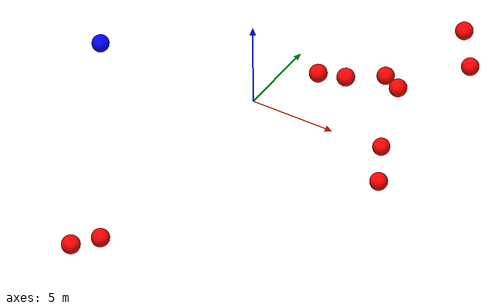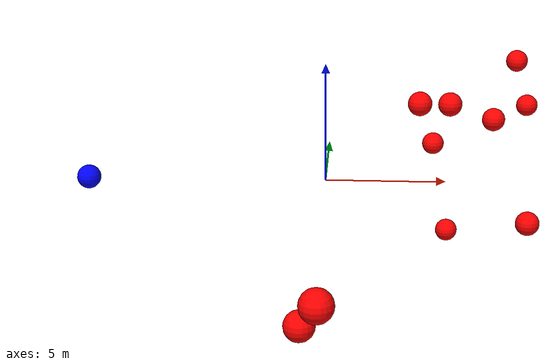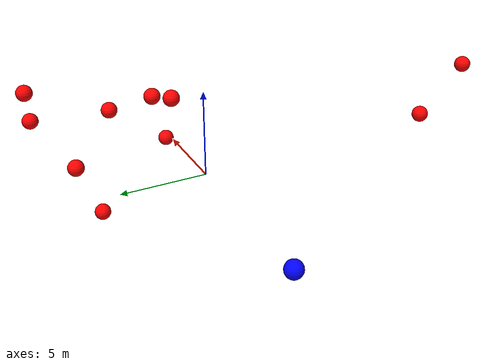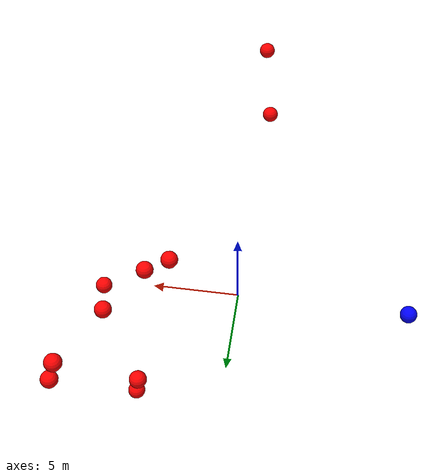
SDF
<?xml version="1.0" ?>
<sdf version="1.8">
    <world name="3d_world">
        <physics name="1ms" type="ode">
            <max_step_size>0.001</max_step_size>
            <real_time_factor>1.0</real_time_factor>
            <real_time_update_rate>1000.0</real_time_update_rate>
        </physics>
        <gravity>0 0 0</gravity>

        <plugin
            filename="gz-sim-physics-system"
            name="gz::sim::v8::systems::Physics">
        </plugin>
        <plugin
            filename="libignition-gazebo-user-commands-system.so"
            name="ignition::gazebo::systems::UserCommands">
        </plugin>
        <plugin
            filename="gz-sim-scene-broadcaster-system"
            name="gz::sim::systems::SceneBroadcaster">
        </plugin>
        <plugin
            filename="gz-sim-sensors-system"
            name="gz::sim::systems::Sensors">
            <render_engine>ogre2</render_engine>
        </plugin>

        <light type="directional" name="sun">
            <cast_shadows>true</cast_shadows>
            <pose>0 0 10 0 0 0</pose>
            <diffuse>0.8 0.8 0.8 1</diffuse>
            <specular>0.2 0.2 0.2 1</specular>
            <attenuation>
                <range>1000</range>
                <constant>0.9</constant>
                <linear>0.01</linear>
                <quadratic>0.001</quadratic>
            </attenuation>
            <direction>-0.5 0.1 -0.9</direction>
        </light>

        <!-- AGENTE -->
        <model name='agente' canonical_link='chassis'>
            <pose relative_to='world'>-10.0 0 0.0 0 0 0</pose>
            <link name='chassis'>
                <pose relative_to='__model__'>0.0 0 0.0 0 0 0</pose>
                <inertial>
                    <mass>1.14395</mass>
                    <inertia>
                        <ixx>0.095329</ixx>
                        <ixy>0</ixy>
                        <ixz>0</ixz>
                        <iyy>0.381317</iyy>
                        <iyz>0</iyz>
                        <izz>0.476646</izz>
                    </inertia>
                </inertial>
                <visual name='visual'>
                    <geometry>
                        <sphere>
                            <radius>0.5</radius>
                        </sphere>
                    </geometry>
                    <material>
                        <ambient>0.0 0.0 1.0 1</ambient>
                        <diffuse>0.0 0.0 1.0 1</diffuse>
                        <specular>0.0 0.0 1.0 1</specular>
                    </material>
                </visual>
                <collision name='collision'>
                    <geometry>
                        <sphere>
                            <radius>0.5</radius>
                        </sphere>
                    </geometry>
                </collision>
                <enable_gravity>false</enable_gravity>
            </link>

            <link name='lidar_link'>
                <pose relative_to='chassis'>0.0 0 0.1 0 0 0</pose>
                <inertial>
                    <mass>0.1</mass>
                    <inertia>
                        <ixx>0.000166667</ixx>
                        <iyy>0.000166667</iyy>
                        <izz>0.000166667</izz>
                    </inertia>
                </inertial>
                <collision name='collision'>
                    <geometry>
                        <cylinder>
                            <radius>0.05</radius>
                            <length>0.1</length>
                        </cylinder>
                    </geometry>
                </collision>
                <visual name='visual'>
                    <geometry>
                        <cylinder>
                            <radius>0.05</radius>
                            <length>0.1</length>
                        </cylinder>
                    </geometry>
                    <material>
                        <ambient>0.0 1.0 0.0 1</ambient>
                        <diffuse>0.0 1.0 0.0 1</diffuse>
                        <specular>0.0 1.0 0.0 1</specular>
                    </material>
                </visual>
                <sensor name="lidar" type="gpu_lidar">
                    <topic>scan</topic>
                    <update_rate>10</update_rate>
                    <lidar>
                        <scan>
                            <horizontal>
                                <samples>5000</samples>
                                <resolution>1</resolution>
                                <min_angle>-3.14159</min_angle>
                                <max_angle>3.14159</max_angle>
                            </horizontal>
                        </scan>
                        <range>
                            <min>0.1</min>
                            <max>10.0</max>
                            <resolution>0.01</resolution>
                        </range>
                    </lidar>
                    <visualize>true</visualize>
                    <always_on>true</always_on>
                    <update_rate>10</update_rate>
                    <pose_frame>lidar</pose_frame>
                </sensor>
                <enable_gravity>false</enable_gravity>
            </link>

            <joint name="lidar_joint" type="fixed">
                <parent>chassis</parent>
                <child>lidar_link</child>
            </joint>

            <plugin
                filename="ignition-gazebo-joint-state-publisher-system"
                name="ignition::gazebo::systems::JointStatePublisher">
            </plugin>
            <plugin
                filename="ignition-gazebo-odometry-publisher-system"
                name="ignition::gazebo::systems::OdometryPublisher">
                <dimensions>3</dimensions>
            </plugin>
            <plugin
                filename="ignition-gazebo-velocity-control-system"
                name="ignition::gazebo::systems::VelocityControl">
                <initial_linear>0.0 0 0</initial_linear>
                <initial_angular>0 0 0.0</initial_angular>
            </plugin>
            <plugin
                filename="libignition-gazebo-pose-publisher-system.so"
                name="ignition::gazebo::systems::PosePublisher">
                <topic>/agente/pose</topic>
                <frame_id>agente</frame_id>
                <update_rate>30</update_rate>
            </plugin>
        </model>

        <!-- OBSTACLE 1 -->
        <model name='obstacle_1' canonical_link='obstacle'>
            <static>false</static>
            <pose relative_to='world'>8.68 7.86 3.18 0 0 0</pose>
            <link name='obstacle'>
                <pose relative_to='__model__'>0.0 0 0.0 0 0 0</pose>
                <visual name='visual'>
                    <geometry>
                        <sphere>
                            <radius>0.50</radius>
                        </sphere>
                    </geometry>
                    <material>
                        <ambient>1.0 0.0 0.0 1</ambient>
                        <diffuse>1.0 0.0 0.0 1</diffuse>
                        <specular>1.0 0.0 0.0 1</specular>
                    </material>
                </visual>
                <collision name='collision'>
                    <geometry>
                        <sphere>
                            <radius>0.50</radius>
                        </sphere>
                    </geometry>
                </collision>
                <enable_gravity>false</enable_gravity>
            </link>

            <plugin
                filename="ignition-gazebo-velocity-control-system"
                name="ignition::gazebo::systems::VelocityControl">
                <initial_linear>-0.93 -1.44 -0.58</initial_linear>
                <initial_angular>0 0 0</initial_angular>
            </plugin>

            <plugin
                filename="ignition-gazebo-odometry-publisher-system"
                name="ignition::gazebo::systems::OdometryPublisher">
                <dimensions>3</dimensions>
            </plugin>
        </model>

        <!-- OBSTACLE 2 -->
        <model name='obstacle_2' canonical_link='obstacle'>
            <static>false</static>
            <pose relative_to='world'>4.78 6.17 -0.39 0 0 0</pose>
            <link name='obstacle'>
                <pose relative_to='__model__'>0.0 0 0.0 0 0 0</pose>
                <visual name='visual'>
                    <geometry>
                        <sphere>
                            <radius>0.50</radius>
                        </sphere>
                    </geometry>
                    <material>
                        <ambient>1.0 0.0 0.0 1</ambient>
                        <diffuse>1.0 0.0 0.0 1</diffuse>
                        <specular>1.0 0.0 0.0 1</specular>
                    </material>
                </visual>
                <collision name='collision'>
                    <geometry>
                        <sphere>
                            <radius>0.50</radius>
                        </sphere>
                    </geometry>
                </collision>
                <enable_gravity>false</enable_gravity>
            </link>

            <plugin
                filename="ignition-gazebo-velocity-control-system"
                name="ignition::gazebo::systems::VelocityControl">
                <initial_linear>-1.34 -1.48 0.09</initial_linear>
                <initial_angular>0 0 0</initial_angular>
            </plugin>

            <plugin
                filename="ignition-gazebo-odometry-publisher-system"
                name="ignition::gazebo::systems::OdometryPublisher">
                <dimensions>3</dimensions>
            </plugin>
        </model>

        <!-- OBSTACLE 3 -->
        <model name='obstacle_3' canonical_link='obstacle'>
            <static>false</static>
            <pose relative_to='world'>-0.22 -14.71 0.83 0 0 0</pose>
            <link name='obstacle'>
                <pose relative_to='__model__'>0.0 0 0.0 0 0 0</pose>
                <visual name='visual'>
                    <geometry>
                        <sphere>
                            <radius>0.50</radius>
                        </sphere>
                    </geometry>
                    <material>
                        <ambient>1.0 0.0 0.0 1</ambient>
                        <diffuse>1.0 0.0 0.0 1</diffuse>
                        <specular>1.0 0.0 0.0 1</specular>
                    </material>
                </visual>
                <collision name='collision'>
                    <geometry>
                        <sphere>
                            <radius>0.50</radius>
                        </sphere>
                    </geometry>
                </collision>
                <enable_gravity>false</enable_gravity>
            </link>

            <plugin
                filename="ignition-gazebo-velocity-control-system"
                name="ignition::gazebo::systems::VelocityControl">
                <initial_linear>0.90 1.79 -0.10</initial_linear>
                <initial_angular>0 0 0</initial_angular>
            </plugin>

            <plugin
                filename="ignition-gazebo-odometry-publisher-system"
                name="ignition::gazebo::systems::OdometryPublisher">
                <dimensions>3</dimensions>
            </plugin>
        </model>

        <!-- OBSTACLE 4 -->
        <model name='obstacle_4' canonical_link='obstacle'>
            <static>false</static>
            <pose relative_to='world'>9.24 7.66 1.07 0 0 0</pose>
            <link name='obstacle'>
                <pose relative_to='__model__'>0.0 0 0.0 0 0 0</pose>
                <visual name='visual'>
                    <geometry>
                        <sphere>
                            <radius>0.50</radius>
                        </sphere>
                    </geometry>
                    <material>
                        <ambient>1.0 0.0 0.0 1</ambient>
                        <diffuse>1.0 0.0 0.0 1</diffuse>
                        <specular>1.0 0.0 0.0 1</specular>
                    </material>
                </visual>
                <collision name='collision'>
                    <geometry>
                        <sphere>
                            <radius>0.50</radius>
                        </sphere>
                    </geometry>
                </collision>
                <enable_gravity>false</enable_gravity>
            </link>

            <plugin
                filename="ignition-gazebo-velocity-control-system"
                name="ignition::gazebo::systems::VelocityControl">
                <initial_linear>-1.61 -1.17 -0.16</initial_linear>
                <initial_angular>0 0 0</initial_angular>
            </plugin>

            <plugin
                filename="ignition-gazebo-odometry-publisher-system"
                name="ignition::gazebo::systems::OdometryPublisher">
                <dimensions>3</dimensions>
            </plugin>
        </model>

        <!-- OBSTACLE 5 -->
        <model name='obstacle_5' canonical_link='obstacle'>
            <static>false</static>
            <pose relative_to='world'>7.22 3.23 1.73 0 0 0</pose>
            <link name='obstacle'>
                <pose relative_to='__model__'>0.0 0 0.0 0 0 0</pose>
                <visual name='visual'>
                    <geometry>
                        <sphere>
                            <radius>0.50</radius>
                        </sphere>
                    </geometry>
                    <material>
                        <ambient>1.0 0.0 0.0 1</ambient>
                        <diffuse>1.0 0.0 0.0 1</diffuse>
                        <specular>1.0 0.0 0.0 1</specular>
                    </material>
                </visual>
                <collision name='collision'>
                    <geometry>
                        <sphere>
                            <radius>0.50</radius>
                        </sphere>
                    </geometry>
                </collision>
                <enable_gravity>false</enable_gravity>
            </link>

            <plugin
                filename="ignition-gazebo-velocity-control-system"
                name="ignition::gazebo::systems::VelocityControl">
                <initial_linear>-1.86 -0.64 -0.34</initial_linear>
                <initial_angular>0 0 0</initial_angular>
            </plugin>

            <plugin
                filename="ignition-gazebo-odometry-publisher-system"
                name="ignition::gazebo::systems::OdometryPublisher">
                <dimensions>3</dimensions>
            </plugin>
        </model>

        <!-- OBSTACLE 6 -->
        <model name='obstacle_6' canonical_link='obstacle'>
            <static>false</static>
            <pose relative_to='world'>5.43 4.70 -4.14 0 0 0</pose>
            <link name='obstacle'>
                <pose relative_to='__model__'>0.0 0 0.0 0 0 0</pose>
                <visual name='visual'>
                    <geometry>
                        <sphere>
                            <radius>0.50</radius>
                        </sphere>
                    </geometry>
                    <material>
                        <ambient>1.0 0.0 0.0 1</ambient>
                        <diffuse>1.0 0.0 0.0 1</diffuse>
                        <specular>1.0 0.0 0.0 1</specular>
                    </material>
                </visual>
                <collision name='collision'>
                    <geometry>
                        <sphere>
                            <radius>0.50</radius>
                        </sphere>
                    </geometry>
                </collision>
                <enable_gravity>false</enable_gravity>
            </link>

            <plugin
                filename="ignition-gazebo-velocity-control-system"
                name="ignition::gazebo::systems::VelocityControl">
                <initial_linear>-1.57 -0.93 0.82</initial_linear>
                <initial_angular>0 0 0</initial_angular>
            </plugin>

            <plugin
                filename="ignition-gazebo-odometry-publisher-system"
                name="ignition::gazebo::systems::OdometryPublisher">
                <dimensions>3</dimensions>
            </plugin>
        </model>

        <!-- OBSTACLE 7 -->
        <model name='obstacle_7' canonical_link='obstacle'>
            <static>false</static>
            <pose relative_to='world'>3.87 0.40 3.26 0 0 0</pose>
            <link name='obstacle'>
                <pose relative_to='__model__'>0.0 0 0.0 0 0 0</pose>
                <visual name='visual'>
                    <geometry>
                        <sphere>
                            <radius>0.50</radius>
                        </sphere>
                    </geometry>
                    <material>
                        <ambient>1.0 0.0 0.0 1</ambient>
                        <diffuse>1.0 0.0 0.0 1</diffuse>
                        <specular>1.0 0.0 0.0 1</specular>
                    </material>
                </visual>
                <collision name='collision'>
                    <geometry>
                        <sphere>
                            <radius>0.50</radius>
                        </sphere>
                    </geometry>
                </collision>
                <enable_gravity>false</enable_gravity>
            </link>

            <plugin
                filename="ignition-gazebo-velocity-control-system"
                name="ignition::gazebo::systems::VelocityControl">
                <initial_linear>0.01 -0.07 -0.59</initial_linear>
                <initial_angular>0 0 0</initial_angular>
            </plugin>

            <plugin
                filename="ignition-gazebo-odometry-publisher-system"
                name="ignition::gazebo::systems::OdometryPublisher">
                <dimensions>3</dimensions>
            </plugin>
        </model>

        <!-- OBSTACLE 8 -->
        <model name='obstacle_8' canonical_link='obstacle'>
            <static>false</static>
            <pose relative_to='world'>5.16 1.13 3.03 0 0 0</pose>
            <link name='obstacle'>
                <pose relative_to='__model__'>0.0 0 0.0 0 0 0</pose>
                <visual name='visual'>
                    <geometry>
                        <sphere>
                            <radius>0.50</radius>
                        </sphere>
                    </geometry>
                    <material>
                        <ambient>1.0 0.0 0.0 1</ambient>
                        <diffuse>1.0 0.0 0.0 1</diffuse>
                        <specular>1.0 0.0 0.0 1</specular>
                    </material>
                </visual>
                <collision name='collision'>
                    <geometry>
                        <sphere>
                            <radius>0.50</radius>
                        </sphere>
                    </geometry>
                </collision>
                <enable_gravity>false</enable_gravity>
            </link>

            <plugin
                filename="ignition-gazebo-velocity-control-system"
                name="ignition::gazebo::systems::VelocityControl">
                <initial_linear>-1.03 -0.26 -0.71</initial_linear>
                <initial_angular>0 0 0</initial_angular>
            </plugin>

            <plugin
                filename="ignition-gazebo-odometry-publisher-system"
                name="ignition::gazebo::systems::OdometryPublisher">
                <dimensions>3</dimensions>
            </plugin>
        </model>

        <!-- OBSTACLE 9 -->
        <model name='obstacle_9' canonical_link='obstacle'>
            <static>false</static>
            <pose relative_to='world'>0.47 -18.34 3.33 0 0 0</pose>
            <link name='obstacle'>
                <pose relative_to='__model__'>0.0 0 0.0 0 0 0</pose>
                <visual name='visual'>
                    <geometry>
                        <sphere>
                            <radius>0.50</radius>
                        </sphere>
                    </geometry>
                    <material>
                        <ambient>1.0 0.0 0.0 1</ambient>
                        <diffuse>1.0 0.0 0.0 1</diffuse>
                        <specular>1.0 0.0 0.0 1</specular>
                    </material>
                </visual>
                <collision name='collision'>
                    <geometry>
                        <sphere>
                            <radius>0.50</radius>
                        </sphere>
                    </geometry>
                </collision>
                <enable_gravity>false</enable_gravity>
            </link>

            <plugin
                filename="ignition-gazebo-velocity-control-system"
                name="ignition::gazebo::systems::VelocityControl">
                <initial_linear>-0.40 1.93 -0.35</initial_linear>
                <initial_angular>0 0 0</initial_angular>
            </plugin>

            <plugin
                filename="ignition-gazebo-odometry-publisher-system"
                name="ignition::gazebo::systems::OdometryPublisher">
                <dimensions>3</dimensions>
            </plugin>
        </model>

        <!-- OBSTACLE 10 -->
        <model name='obstacle_10' canonical_link='obstacle'>
            <static>false</static>
            <pose relative_to='world'>8.39 -0.75 -1.52 0 0 0</pose>
            <link name='obstacle'>
                <pose relative_to='__model__'>0.0 0 0.0 0 0 0</pose>
                <visual name='visual'>
                    <geometry>
                        <sphere>
                            <radius>0.50</radius>
                        </sphere>
                    </geometry>
                    <material>
                        <ambient>1.0 0.0 0.0 1</ambient>
                        <diffuse>1.0 0.0 0.0 1</diffuse>
                        <specular>1.0 0.0 0.0 1</specular>
                    </material>
                </visual>
                <collision name='collision'>
                    <geometry>
                        <sphere>
                            <radius>0.50</radius>
                        </sphere>
                    </geometry>
                </collision>
                <enable_gravity>false</enable_gravity>
            </link>

            <plugin
                filename="ignition-gazebo-velocity-control-system"
                name="ignition::gazebo::systems::VelocityControl">
                <initial_linear>-0.47 0.12 0.24</initial_linear>
                <initial_angular>0 0 0</initial_angular>
            </plugin>

            <plugin
                filename="ignition-gazebo-odometry-publisher-system"
                name="ignition::gazebo::systems::OdometryPublisher">
                <dimensions>3</dimensions>
            </plugin>
        </model>

    </world>
</sdf>
